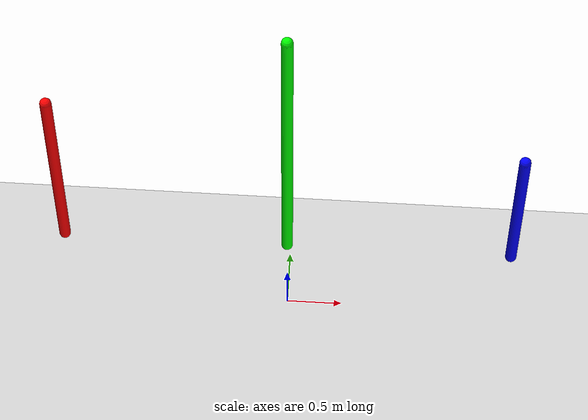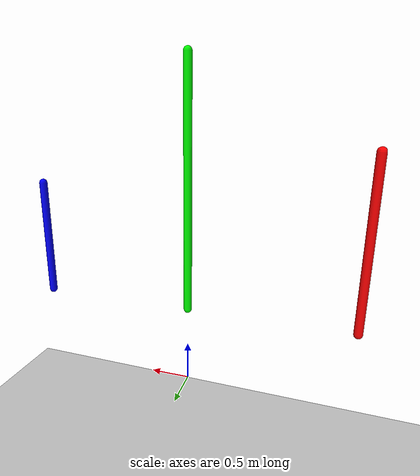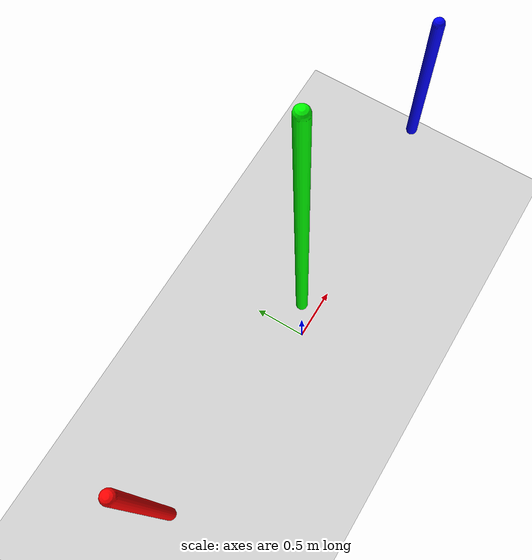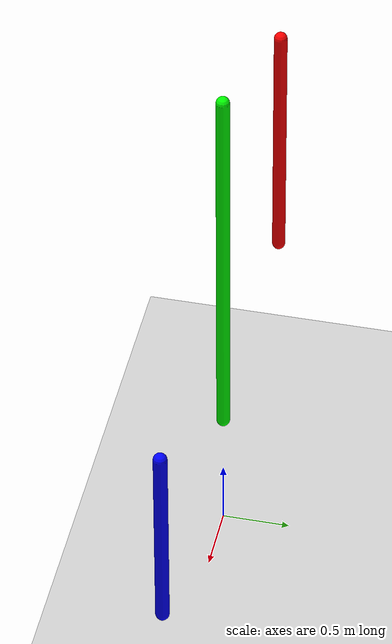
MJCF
<mujoco>
  <option gravity="0 0 -9.81" />
  <worldbody>
    <body name="object_5" pos="0 0 -1">
      <geom type="plane" size="30 30 0.1" rgba="0.8 0.8 0.8 1" />
    </body>
    <body name="object_4" pos="0 0 0" />
    <body name="object_1" pos="-2 0 1">
      <geom type="capsule" fromto="0 0 0 0 0 2" size="0.05" density="500" rgba="1 0 0 1" />
      <joint type="hinge" axis="0 1 0" pos="0 0 0" name="object_1_joint" />
    </body>
    <body name="object_2" pos="0 0 1">
      <geom type="capsule" fromto="0 0 0 0 0 3" size="0.05" density="500" rgba="0 1 0 1" />
      <joint type="hinge" axis="0 1 0" pos="0 0 0" name="object_2_joint" />
    </body>
    <body name="object_3" pos="2 0 1">
      <geom type="capsule" fromto="0 0 0 0 0 1.5" size="0.05" density="500" rgba="0 0 1 1" />
      <joint type="hinge" axis="0 1 0" pos="0 0 0" name="object_3_joint" />
    </body>
  </worldbody>
</mujoco>
